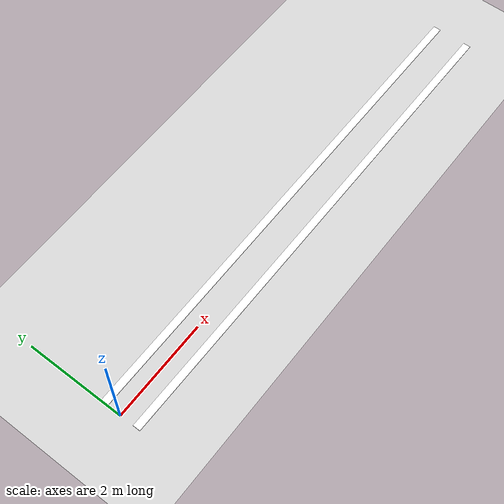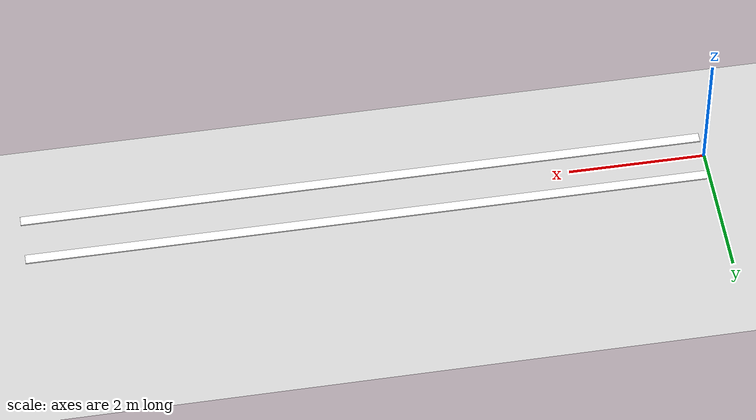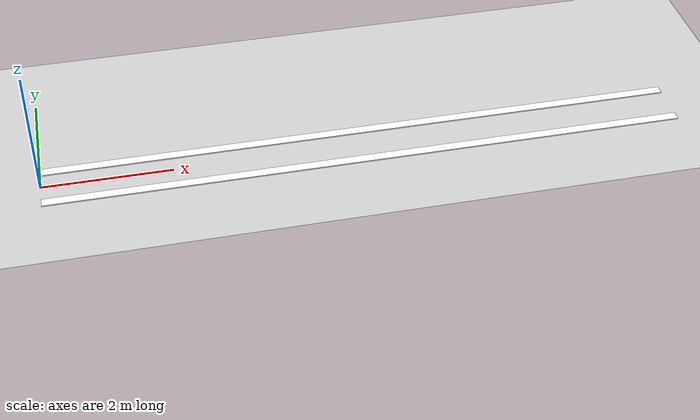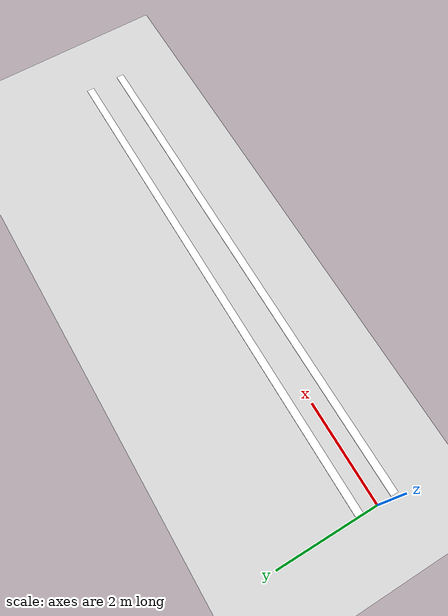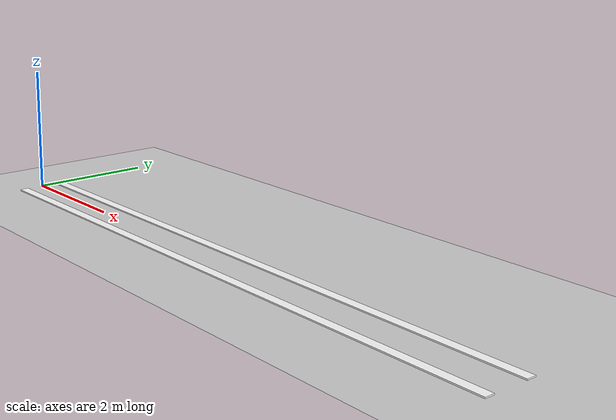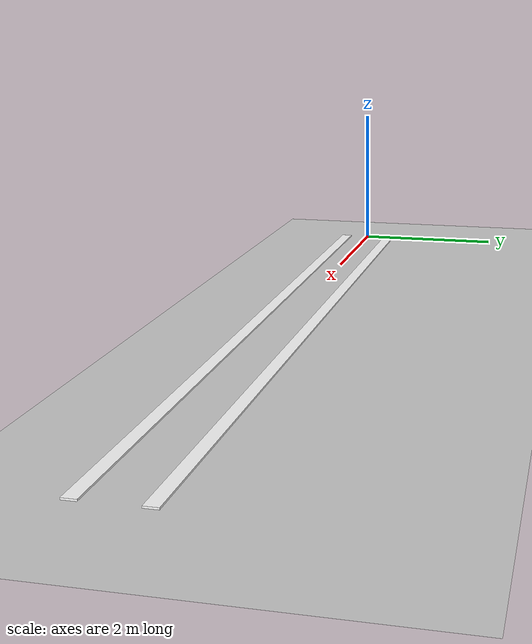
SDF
<?xml version="1.0" ?>
<sdf version="1.6">
  <world name="lane_keep">

    <!-- Lighting -->
    <include>
      <uri>model://sun</uri>
    </include>

    <!-- Ground plane -->
    <include>
      <uri>model://ground_plane</uri>
    </include>

    <!-- Left lane line -->
    <model name="left_line">
      <static>true</static>
      <link name="link">
        <visual name="visual">
          <geometry>
            <box>
              <size>10 0.15 0.02</size>
            </box>
          </geometry>
          <material>
            <ambient>1 1 1 1</ambient>
            <diffuse>1 1 1 1</diffuse>
          </material>
        </visual>
        <pose>5 0.35 0 0 0 0</pose>
      </link>
    </model>

    <!-- Right lane line -->
    <model name="right_line">
      <static>true</static>
      <link name="link">
        <visual name="visual">
          <geometry>
            <box>
              <size>10 0.15 0.02</size>
            </box>
          </geometry>
          <material>
            <ambient>1 1 1 1</ambient>
            <diffuse>1 1 1 1</diffuse>
          </material>
        </visual>
        <pose>5 -0.35 0 0 0 0</pose>
      </link>
    </model>

    <physics type="ode">
      <ode>
        <constraints>
          <cfm>0.00001</cfm>  <!-- Small positive for stability -->
          <erp>0.2</erp>
          <contact_surface_layer>0.001</contact_surface_layer>
          <contact_max_correcting_vel>100.0</contact_max_correcting_vel>
          <iters>100</iters>  <!-- Increase solver iterations (try 200-500 if needed) -->
        </constraints>
      </ode>
      <max_step_size>0.001</max_step_size>
      <real_time_update_rate>1000</real_time_update_rate>
    </physics>

  </world>
</sdf>
